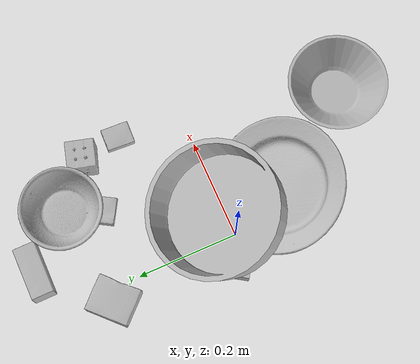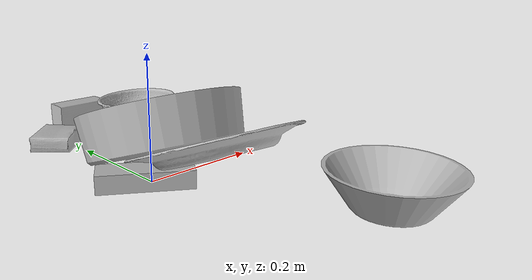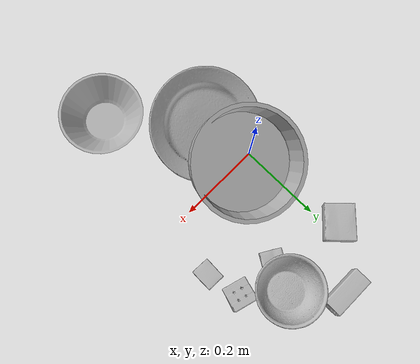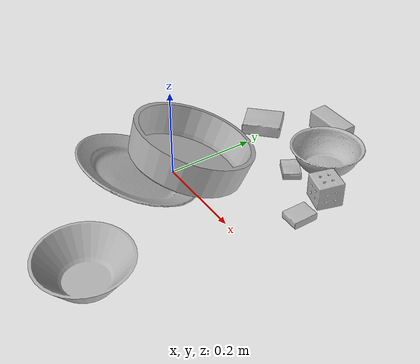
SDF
<sdf version="1.4">
  <world name="default">
    <light name="light1" type="point">
      <pose>0 0 1 0 0 0</pose>
      <diffuse>3 3 3 1</diffuse>
      <specular>3 3 3 1</specular>
    </light>
    <light name="light2" type="point">
      <pose>0 0.5 2 0 0 0</pose>
      <diffuse>1 1 1 1</diffuse>
      <specular>1 1 1 1</specular>
    </light>
    <light name="light3" type="point">
      <pose>0 0.5 2 0 0 0</pose>
      <diffuse>3 3 3 1</diffuse>
      <specular>3 3 3 1</specular>
    </light>
    <scene>
      <ambient>0.7 0.7 0.7</ambient>
    </scene>
    <model name="box1">
      <link name="link_box1">
        <collision name="default">
          <geometry>
            <mesh>
              <uri>model://rubiks_cube/collision_meshes/collision.obj</uri>
              <scale>1.0 1.0 1.0</scale>
            </mesh>
          </geometry>
          <surface>
            <friction>
              <ode>
                <mu>0.5</mu>
                <mu2>0.5</mu2>
              </ode>
            </friction>
          <contact>
        <ode>
            <max_vel>0</max_vel>
            <min_depth>0.0001</min_depth>
            <kp>1e8</kp>
        </ode>
    </contact></surface>
        </collision>
        <visual name="default">
          <geometry>
            <mesh>
              <uri>model://rubiks_cube/visual_meshes/visual.dae</uri>
              <scale>1.0 1.0 1.0</scale>
            </mesh>
          </geometry>
        </visual>
        <inertial>
          <mass>0.14937607944011688</mass>
          <pose>2.6721041649580002e-05 5.256967051536776e-05 -7.264316082000732e-06 -0.054671979216720346 -0.0981390543553378 -0.03445400726577695</pose>
          <inertia>
            <ixx>8.254031e-05</ixx>
            <iyy>8.2155384e-05</iyy>
            <izz>8.32243e-05</izz>
            <ixy>0</ixy>
            <ixz>0</ixz>
            <iyz>0</iyz>
          </inertia>
        </inertial>
      </link>
      <pose>0.25435981154441833 0.21291612088680267 0.028684258460998535 -0.006113318533501108 -0.005973574393117748 1.2926476959798847</pose>
    </model>
    <model name="box11">
      <link name="link_box11">
        <collision name="default">
          <geometry>
            <mesh>
              <uri>model://gelatin_box/collision_meshes/collision.obj</uri>
              <scale>1.0 1.0 1.0</scale>
            </mesh>
          </geometry>
          <surface>
            <friction>
              <ode>
                <mu>0.5</mu>
                <mu2>0.5</mu2>
              </ode>
            </friction>
          <contact>
        <ode>
            <max_vel>0</max_vel>
            <min_depth>0.0001</min_depth>
            <kp>1e8</kp>
        </ode>
    </contact></surface>
        </collision>
        <visual name="default">
          <geometry>
            <mesh>
              <uri>model://gelatin_box/visual_meshes/visual.dae</uri>
              <scale>1.0 1.0 1.0</scale>
            </mesh>
          </geometry>
        </visual>
        <inertial>
          <mass>0.1927502304315567</mass>
          <pose>0.0004319618456065655 0.00011156871914863586 -0.00036403213744051754 -0.0010503718519204429 -0.00475581822657324 0.016440557608202722</pose>
          <inertia>
            <ixx>0.00013606594</ixx>
            <iyy>9.7191194e-05</iyy>
            <izz>0.00020712269</izz>
            <ixy>0</ixy>
            <ixz>0</ixz>
            <iyz>0</iyz>
          </inertia>
        </inertial>
      </link>
      <pose>-0.02468978241086006 0.2624184191226959 0.015168311074376106 0.005597487921536435 -0.0073045829699962305 -0.8085362989725012</pose>
    </model>
    <model name="box2">
      <link name="link_box2">
        <collision name="default">
          <geometry>
            <mesh>
              <uri>model://jenga/collision_meshes/collision.obj</uri>
              <scale>1.0 1.0 1.0</scale>
            </mesh>
          </geometry>
          <surface>
            <friction>
              <ode>
                <mu>0.5</mu>
                <mu2>0.5</mu2>
              </ode>
            </friction>
          <contact>
        <ode>
            <max_vel>0</max_vel>
            <min_depth>0.0001</min_depth>
            <kp>1e8</kp>
        </ode>
    </contact></surface>
        </collision>
        <visual name="default">
          <geometry>
            <mesh>
              <uri>model://jenga/visual_meshes/visual.dae</uri>
              <scale>1.0 1.0 1.0</scale>
            </mesh>
          </geometry>
        </visual>
        <inertial>
          <mass>0.17753760516643524</mass>
          <pose>-2.5028555228345795e-07 -0.00010250010382151231 -4.0923401684267446e-05 0.0 -7.342155186052628e-07 0.0</pose>
          <inertia>
            <ixx>4.912897e-05</ixx>
            <iyy>0.00033289654</iyy>
            <izz>0.00035539534</izz>
            <ixy>0</ixy>
            <ixz>0</ixz>
            <iyz>0</iyz>
          </inertia>
        </inertial>
      </link>
      <pose>-0.015197454951703548 -0.005689725279808044 0.015014298260211945 -0.000202490489331372 5.5002566050853745e-05 -0.573630976200021</pose>
    </model>
    <model name="box21">
      <link name="link_box21">
        <collision name="default">
          <geometry>
            <mesh>
              <uri>model://cracker_box/collision_meshes/collision.obj</uri>
              <scale>0.25 0.25 0.25</scale>
            </mesh>
          </geometry>
          <surface>
            <friction>
              <ode>
                <mu>0.5</mu>
                <mu2>0.5</mu2>
              </ode>
            </friction>
          <contact>
        <ode>
            <max_vel>0</max_vel>
            <min_depth>0.0001</min_depth>
            <kp>1e8</kp>
        </ode>
    </contact></surface>
        </collision>
        <visual name="default">
          <geometry>
            <mesh>
              <uri>model://cracker_box/visual_meshes/visual.dae</uri>
              <scale>0.25 0.25 0.25</scale>
            </mesh>
          </geometry>
        </visual>
        <inertial>
          <mass>0.032025858759880066</mass>
          <pose>0.00023660347505938262 6.358561950037256e-05 -0.0004257383698131889 -0.0003162079452709603 -0.01110648960005095 0.0025467945380896087</pose>
          <inertia>
            <ixx>5.091218e-06</ixx>
            <iyy>8.406602e-06</iyy>
            <izz>1.1996991e-05</izz>
            <ixy>0</ixy>
            <ixz>0</ixz>
            <iyz>0</iyz>
          </inertia>
        </inertial>
      </link>
      <pose>0.14363893866539001 0.2111198604106903 0.009096026420593262 -0.014050365729421895 -0.005016823472501571 -0.5402666441843421</pose>
    </model>
    <model name="box3">
      <link name="link_box3">
        <collision name="default">
          <geometry>
            <mesh>
              <uri>model://wood_block/collision_meshes/collision.obj</uri>
              <scale>0.5 0.5 0.5</scale>
            </mesh>
          </geometry>
          <surface>
            <friction>
              <ode>
                <mu>0.5</mu>
                <mu2>0.5</mu2>
              </ode>
            </friction>
          <contact>
        <ode>
            <max_vel>0</max_vel>
            <min_depth>0.0001</min_depth>
            <kp>1e8</kp>
        </ode>
    </contact></surface>
        </collision>
        <visual name="default">
          <geometry>
            <mesh>
              <uri>model://wood_block/visual_meshes/visual.dae</uri>
              <scale>0.5 0.5 0.5</scale>
            </mesh>
          </geometry>
        </visual>
        <inertial>
          <mass>0.12936852872371674</mass>
          <pose>-2.9066577553749084e-06 -0.00028540470520965755 0.00013204290007706732 -0.052209755292171825 -0.0051926950820086835 -0.006861377939779924</pose>
          <inertia>
            <ixx>4.327867e-05</ixx>
            <iyy>0.00013671734</iyy>
            <izz>0.00013620593</izz>
            <ixy>0</ixy>
            <ixz>0</ixz>
            <iyz>0</iyz>
          </inertia>
        </inertial>
      </link>
      <pose>0.0837768092751503 0.37778469920158386 0.0226292721927166 -0.005208506516999607 0.0057187983438393795 0.0029439278125061256</pose>
    </model>
    <model name="box31">
      <link name="link_box31">
        <collision name="default">
          <geometry>
            <mesh>
              <uri>model://pudding_box/collision_meshes/collision.obj</uri>
              <scale>0.5 0.5 0.5</scale>
            </mesh>
          </geometry>
          <surface>
            <friction>
              <ode>
                <mu>0.5</mu>
                <mu2>0.5</mu2>
              </ode>
            </friction>
          <contact>
        <ode>
            <max_vel>0</max_vel>
            <min_depth>0.0001</min_depth>
            <kp>1e8</kp>
        </ode>
    </contact></surface>
        </collision>
        <visual name="default">
          <geometry>
            <mesh>
              <uri>model://pudding_box/visual_meshes/visual.dae</uri>
              <scale>0.5 0.5 0.5</scale>
            </mesh>
          </geometry>
        </visual>
        <inertial>
          <mass>0.02777985855937004</mass>
          <pose>0.00024474109522998333 0.00040339428232982755 -0.0002594413817860186 0.005213100847255284 -0.006603800106148706 0.020079825159203687</pose>
          <inertia>
            <ixx>7.850925e-06</ixx>
            <iyy>5.282159e-06</iyy>
            <izz>1.1593943e-05</izz>
            <ixy>0</ixy>
            <ixz>0</ixz>
            <iyz>0</iyz>
          </inertia>
        </inertial>
      </link>
      <pose>0.2715374827384949 0.13178741931915283 0.009862903505563736 0.022348596419655364 -0.01139163530195096 -0.03977808861859894</pose>
    </model>
    <model name="plate1">
      <link name="link_plate1">
        <collision name="default">
          <geometry>
            <mesh>
              <uri>model://plate/collision_meshes/collision.obj</uri>
              <scale>1.0 1.0 1.0</scale>
            </mesh>
          </geometry>
          <surface>
            <friction>
              <ode>
                <mu>0.5</mu>
                <mu2>0.5</mu2>
              </ode>
            </friction>
          <contact>
        <ode>
            <max_vel>0</max_vel>
            <min_depth>0.0001</min_depth>
            <kp>1e8</kp>
        </ode>
    </contact></surface>
        </collision>
        <visual name="default">
          <geometry>
            <mesh>
              <uri>model://plate/visual_meshes/visual.dae</uri>
              <scale>1.0 1.0 1.0</scale>
            </mesh>
          </geometry>
        </visual>
        <inertial>
          <mass>0.18243028223514557</mass>
          <pose>-0.0006044635083526373 0.00027825916185975075 -0.0010561967501416802 0.002218802985991306 -0.003225472580220492 0.4526054178664253</pose>
          <inertia>
            <ixx>0.00085341244</ixx>
            <iyy>0.00084524986</iyy>
            <izz>0.0016691468</izz>
            <ixy>0</ixy>
            <ixz>0</ixz>
            <iyz>0</iyz>
          </inertia>
        </inertial>
      </link>
      <pose>0.0389828234910965 -0.10674705356359482 0.07274291664361954 -0.2070384262286457 -0.3368387588072323 -1.1574403823167079</pose>
    </model>
    <model name="bowl1">
      <link name="link_bowl1">
        <collision name="default">
          <geometry>
            <mesh>
              <uri>model://bowl_a/collision_meshes/collision.obj</uri>
              <scale>1.0 1.0 1.0</scale>
            </mesh>
          </geometry>
          <surface>
            <friction>
              <ode>
                <mu>0.5</mu>
                <mu2>0.5</mu2>
              </ode>
            </friction>
          <contact>
        <ode>
            <max_vel>0</max_vel>
            <min_depth>0.0001</min_depth>
            <kp>1e8</kp>
        </ode>
    </contact></surface>
        </collision>
        <visual name="default">
          <geometry>
            <mesh>
              <uri>model://bowl_a/visual_meshes/visual.dae</uri>
              <scale>1.0 1.0 1.0</scale>
            </mesh>
          </geometry>
        </visual>
        <inertial>
          <mass>0.33530884981155396</mass>
          <pose>0.00027867525932379067 4.7312179958680645e-05 -0.0013765293406322598 -0.0009805353119733814 -0.0010938238033148682 -0.19123781325276382</pose>
          <inertia>
            <ixx>0.0009546399</ixx>
            <iyy>0.0009605007</iyy>
            <izz>0.0016978635</izz>
            <ixy>0</ixy>
            <ixz>0</ixz>
            <iyz>0</iyz>
          </inertia>
        </inertial>
      </link>
      <pose>0.18597199022769928 -0.3015022873878479 0.030383000150322914 -4.189752238792835e-06 3.2259659515780817e-06 -2.304184345355363</pose>
    </model>
    <model name="plate2">
      <link name="link_plate2">
        <collision name="default">
          <geometry>
            <mesh>
              <uri>model://pan_tefal/collision_meshes/collision.obj</uri>
              <scale>1.0 1.0 1.0</scale>
            </mesh>
          </geometry>
          <surface>
            <friction>
              <ode>
                <mu>0.5</mu>
                <mu2>0.5</mu2>
              </ode>
            </friction>
          <contact>
        <ode>
            <max_vel>0</max_vel>
            <min_depth>0.0001</min_depth>
            <kp>1e8</kp>
        </ode>
    </contact></surface>
        </collision>
        <visual name="default">
          <geometry>
            <mesh>
              <uri>model://pan_tefal/visual_meshes/visual.dae</uri>
              <scale>1.0 1.0 1.0</scale>
            </mesh>
          </geometry>
        </visual>
        <inertial>
          <mass>1.3054066896438599</mass>
          <pose>-0.00018001779972109944 3.2791245757834986e-05 -0.008514936082065105 0.0008190347553724757 -0.0003301394488099971 -0.33186691456643896</pose>
          <inertia>
            <ixx>0.00901116</ixx>
            <iyy>0.009069256</iyy>
            <izz>0.016587809</izz>
            <ixy>0</ixy>
            <ixz>0</ixz>
            <iyz>0</iyz>
          </inertia>
        </inertial>
      </link>
      <pose>0.03954949229955673 0.020314667373895645 0.0765850767493248 -0.20162486860983117 -0.2990029020150562 -1.127717324579467</pose>
    </model>
    <model name="bowl2">
      <link name="link_bowl2">
        <collision name="default">
          <geometry>
            <mesh>
              <uri>model://bowl/collision_meshes/collision.obj</uri>
              <scale>1.0 1.0 1.0</scale>
            </mesh>
          </geometry>
          <surface>
            <friction>
              <ode>
                <mu>0.5</mu>
                <mu2>0.5</mu2>
              </ode>
            </friction>
          <contact>
        <ode>
            <max_vel>0</max_vel>
            <min_depth>0.0001</min_depth>
            <kp>1e8</kp>
        </ode>
    </contact></surface>
        </collision>
        <visual name="default">
          <geometry>
            <mesh>
              <uri>model://bowl/visual_meshes/visual.dae</uri>
              <scale>1.0 1.0 1.0</scale>
            </mesh>
          </geometry>
        </visual>
        <inertial>
          <mass>0.1096961572766304</mass>
          <pose>0.00020445209520403296 -0.0010302049340680242 -0.0008042648551054299 -0.015764066902751193 0.014546817497496476 0.7140421604823016</pose>
          <inertia>
            <ixx>0.00025198064</ixx>
            <iyy>0.00024635042</iyy>
            <izz>0.0004239182</izz>
            <ixy>0</ixy>
            <ixz>0</ixz>
            <iyz>0</iyz>
          </inertia>
        </inertial>
      </link>
      <pose>0.171450674533844 0.28566116094589233 0.030393177643418312 0.06560997231239876 0.012729290425059103 -2.584148430064772</pose>
    </model>
  <physics type="ode">
      <max_contacts>50</max_contacts>
      <ode>
        <solver>
          <type>quick</type>
          <iters>75</iters>
        </solver>
        <constraints>
          <contact_max_correcting_vel>0</contact_max_correcting_vel>
          <contact_surface_layer>0</contact_surface_layer>
        </constraints>
      </ode>
    </physics></world>
</sdf>
